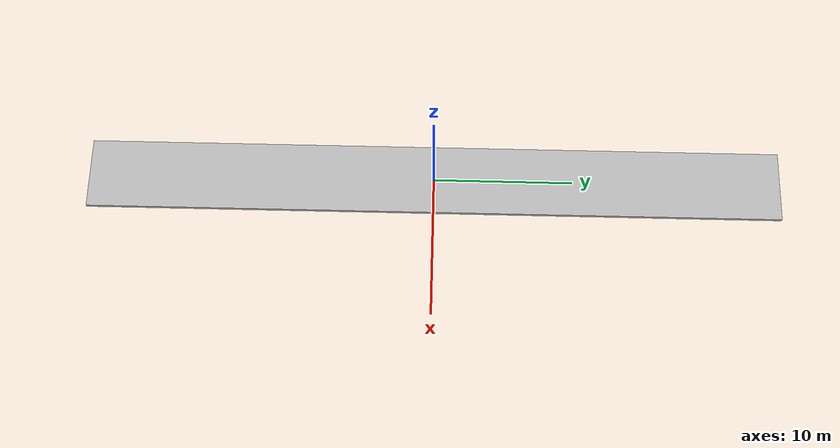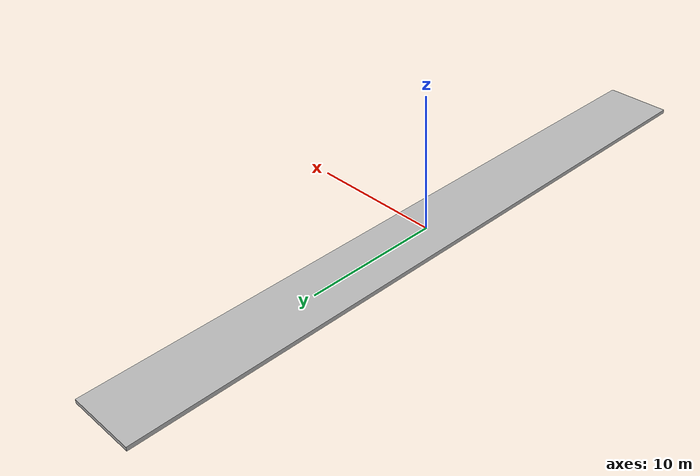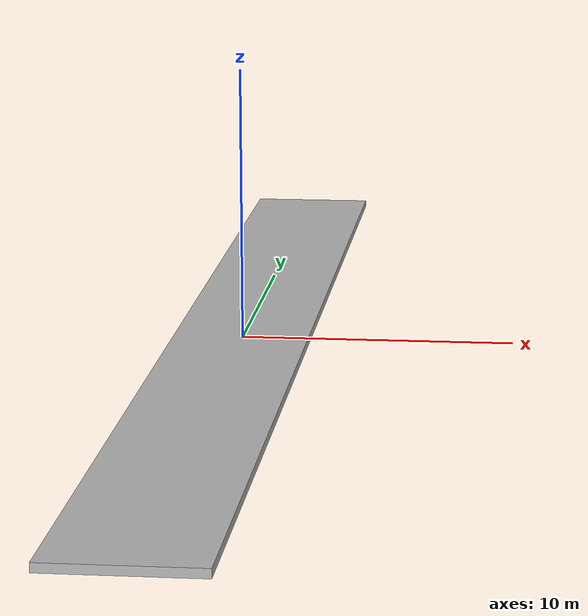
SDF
<?xml version="1.0" ?>
<sdf version="1.5">
  <model name="sidewalk">
    <static>true</static>
    <link name="link">
      <collision name="collision">
        <geometry>
          <box>
            <size>5 50 .3</size>
          </box>
        </geometry>
      </collision>
      <visual name="visual">
        <cast_shadows>false</cast_shadows>
        <geometry>
          <box>
            <size>5 50 .3</size>
          </box>
        </geometry>
        <material>
          <script>
            <uri>model://sidewalk/materials/scripts</uri>
            <uri>model://sidewalk/materials/textures</uri>
            <name>vrc/sidewalk</name>
          </script>
        </material>
      </visual>
    </link>
  </model>
</sdf>
